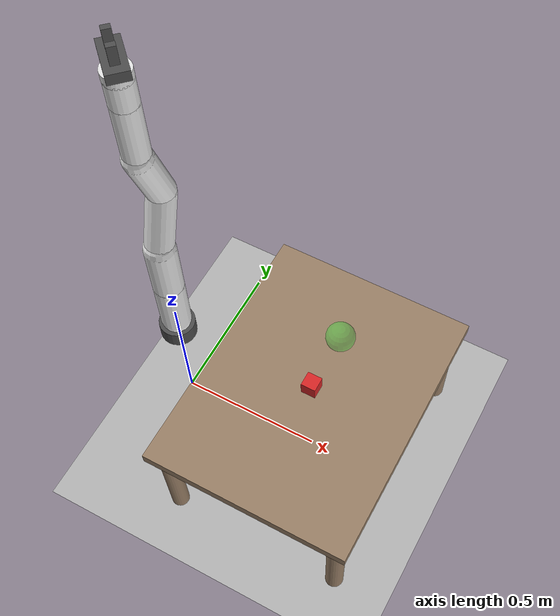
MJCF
<mujoco model="tabletop_pick_place">
  <compiler angle="radian" autolimits="true"/>

  <option timestep="0.001" gravity="0 0 -9.81" integrator="implicitfast">
    <flag warmstart="enable"/>
  </option>

  <default>
    <default class="panda">
      <joint damping="100" armature="0.1"/>
      <general ctrllimited="true"/>
      <default class="panda_link">
        <geom type="capsule" rgba="0.9 0.9 0.9 1" condim="4" friction="0.8 0.02 0.01"/>
      </default>
      <default class="panda_finger">
        <geom type="box" rgba="0.3 0.3 0.3 1" condim="4" friction="1.0 0.02 0.01" solimp="0.95 0.99 0.001" solref="0.01 1"/>
        <joint damping="50" armature="0.01"/>
      </default>
    </default>
  </default>

  <asset>
    <texture name="grid" type="2d" builtin="checker" rgb1="0.8 0.8 0.8" rgb2="0.6 0.6 0.6" width="512" height="512"/>
    <material name="grid_mat" texture="grid" texrepeat="8 8" texuniform="true" reflectance="0.1"/>
    <material name="table_mat" rgba="0.6 0.5 0.4 1" reflectance="0.05"/>
    <material name="cube_mat" rgba="0.85 0.15 0.15 1" reflectance="0.2"/>
    <material name="target_mat" rgba="0.2 0.9 0.2 0.4"/>
  </asset>

  <worldbody>
    <!-- Ground plane -->
    <geom name="ground" type="plane" size="2 2 0.01" material="grid_mat"/>
    <light name="light_dir" directional="true" pos="0.5 0.0 3.0" dir="0 0 -1" diffuse="0.7 0.7 0.7" specular="0.3 0.3 0.3"/>
    <light name="light_fill" directional="true" pos="-0.5 1.0 2.0" dir="0.2 -0.4 -0.8" diffuse="0.4 0.4 0.4" specular="0.1 0.1 0.1"/>

    <!-- Table -->
    <body name="table" pos="0.5 0.0 0.0">
      <geom name="table_top" type="box" size="0.35 0.45 0.02" pos="0 0 0.4" material="table_mat" mass="100"/>
      <geom name="table_leg1" type="cylinder" size="0.03" fromto="-0.3 -0.4 0.0 -0.3 -0.4 0.38" material="table_mat"/>
      <geom name="table_leg2" type="cylinder" size="0.03" fromto="0.3 -0.4 0.0  0.3 -0.4 0.38" material="table_mat"/>
      <geom name="table_leg3" type="cylinder" size="0.03" fromto="-0.3  0.4 0.0 -0.3  0.4 0.38" material="table_mat"/>
      <geom name="table_leg4" type="cylinder" size="0.03" fromto="0.3  0.4 0.0  0.3  0.4 0.38" material="table_mat"/>
    </body>

    <!-- Franka Panda Arm (mounted on table level) -->
    <body name="panda_base" pos="0.0 0.0 0.42" childclass="panda">
      <geom name="base_geom" type="cylinder" size="0.06 0.03" rgba="0.3 0.3 0.3 1" mass="3.0"/>

      <!-- Link 0 -> Joint 1 -->
      <body name="panda_link1" pos="0 0 0.05">
        <joint name="panda_joint1" type="hinge" axis="0 0 1" range="-2.8973 2.8973" damping="80"/>
        <geom name="link1_geom" class="panda_link" fromto="0 0 0 0 0 0.19" size="0.05" mass="3.5"/>

        <!-- Link 1 -> Joint 2 -->
        <body name="panda_link2" pos="0 0 0.195">
          <joint name="panda_joint2" type="hinge" axis="0 1 0" range="-1.7628 1.7628" damping="80"/>
          <geom name="link2_geom" class="panda_link" fromto="0 0 0 0 0 0.19" size="0.05" mass="3.5"/>

          <!-- Link 2 -> Joint 3 -->
          <body name="panda_link3" pos="0 0 0.195">
            <joint name="panda_joint3" type="hinge" axis="0 0 1" range="-2.8973 2.8973" damping="80"/>
            <geom name="link3_geom" class="panda_link" fromto="0 0 0 0 0.06 0.19" size="0.045" mass="2.5"/>

            <!-- Link 3 -> Joint 4 -->
            <body name="panda_link4" pos="0 0.06 0.195">
              <joint name="panda_joint4" type="hinge" axis="0 -1 0" range="-3.0718 -0.0698" damping="80"/>
              <geom name="link4_geom" class="panda_link" fromto="0 0 0 0 -0.06 0.19" size="0.045" mass="2.5"/>

              <!-- Link 4 -> Joint 5 -->
              <body name="panda_link5" pos="0 -0.06 0.195">
                <joint name="panda_joint5" type="hinge" axis="0 0 1" range="-2.8973 2.8973" damping="60"/>
                <geom name="link5_geom" class="panda_link" fromto="0 0 0 0 0.0 0.19" size="0.04" mass="2.0"/>

                <!-- Link 5 -> Joint 6 -->
                <body name="panda_link6" pos="0 0.0 0.195">
                  <joint name="panda_joint6" type="hinge" axis="0 1 0" range="-0.0175 3.7525" damping="40"/>
                  <geom name="link6_geom" class="panda_link" fromto="0 0 0 0 0.0 0.08" size="0.04" mass="1.5"/>

                  <!-- Link 6 -> Joint 7 (wrist) -->
                  <body name="panda_link7" pos="0 0 0.09">
                    <joint name="panda_joint7" type="hinge" axis="0 0 1" range="-2.8973 2.8973" damping="20"/>
                    <geom name="link7_geom" class="panda_link" type="cylinder" size="0.04 0.015" mass="0.5"/>

                    <!-- Flange / Hand -->
                    <body name="panda_hand" pos="0 0 0.04" quat="0.9238795 0 0 0.3826834">
                      <geom name="hand_geom" type="box" size="0.03 0.06 0.015" rgba="0.3 0.3 0.3 1" mass="0.5"/>

                      <!-- Wrist camera -->
                      <camera name="wrist" pos="0.0 0.0 0.06" xyaxes="0 -1 0 0.5 0 1" fovy="60"/>

                      <!-- Left finger -->
                      <body name="panda_finger_left" pos="0 0.02 0.04">
                        <joint name="panda_finger_joint1" type="slide" axis="0 1 0" range="0.001 0.04" damping="50"/>
                        <geom name="finger_left_geom" class="panda_finger" size="0.012 0.008 0.028" pos="0 0.008 0"/>
                      </body>

                      <!-- Right finger -->
                      <body name="panda_finger_right" pos="0 -0.02 0.04">
                        <joint name="panda_finger_joint2" type="slide" axis="0 -1 0" range="0.001 0.04" damping="50"/>
                        <geom name="finger_right_geom" class="panda_finger" size="0.012 0.008 0.028" pos="0 -0.008 0"/>
                      </body>
                    </body>
                  </body>
                </body>
              </body>
            </body>
          </body>
        </body>
      </body>
    </body>

    <!-- Cube (manipulated object) -->
    <body name="cube" pos="0.5 0.0 0.445">
      <freejoint name="cube_joint"/>
      <geom name="cube_geom" type="box" size="0.025 0.025 0.025" material="cube_mat" mass="0.05" condim="4" friction="1.0 0.02 0.01"/>
    </body>

    <!-- Target marker (visual only) -->
    <body name="target" pos="0.5 0.2 0.445">
      <geom name="target_geom" type="sphere" size="0.05" material="target_mat" contype="0" conaffinity="0"/>
    </body>

    <!-- Front camera -->
    <camera name="front" pos="1.2 0.0 1.0" xyaxes="0 1 0 -0.5 0 0.866" fovy="45"/>
  </worldbody>

  <!-- Actuators for Panda: 7 arm joints + 2 gripper joints -->
  <actuator>
    <general name="panda_actuator1" joint="panda_joint1" gainprm="300" biasprm="0 -300 -50" biastype="affine" ctrlrange="-2.8973 2.8973"/>
    <general name="panda_actuator2" joint="panda_joint2" gainprm="300" biasprm="0 -300 -50" biastype="affine" ctrlrange="-1.7628 1.7628"/>
    <general name="panda_actuator3" joint="panda_joint3" gainprm="300" biasprm="0 -300 -50" biastype="affine" ctrlrange="-2.8973 2.8973"/>
    <general name="panda_actuator4" joint="panda_joint4" gainprm="300" biasprm="0 -300 -50" biastype="affine" ctrlrange="-3.0718 -0.0698"/>
    <general name="panda_actuator5" joint="panda_joint5" gainprm="200" biasprm="0 -200 -30" biastype="affine" ctrlrange="-2.8973 2.8973"/>
    <general name="panda_actuator6" joint="panda_joint6" gainprm="100" biasprm="0 -100 -20" biastype="affine" ctrlrange="-0.0175 3.7525"/>
    <general name="panda_actuator7" joint="panda_joint7" gainprm="50" biasprm="0 -50 -10" biastype="affine" ctrlrange="-2.8973 2.8973"/>
    <general name="panda_finger_actuator1" joint="panda_finger_joint1" gainprm="100" biasprm="0 -100 -10" biastype="affine" ctrlrange="0.001 0.04"/>
    <general name="panda_finger_actuator2" joint="panda_finger_joint2" gainprm="100" biasprm="0 -100 -10" biastype="affine" ctrlrange="0.001 0.04"/>
  </actuator>
</mujoco>
